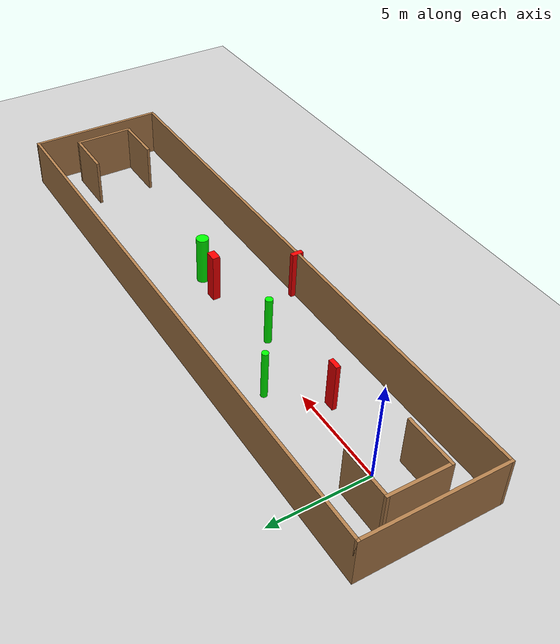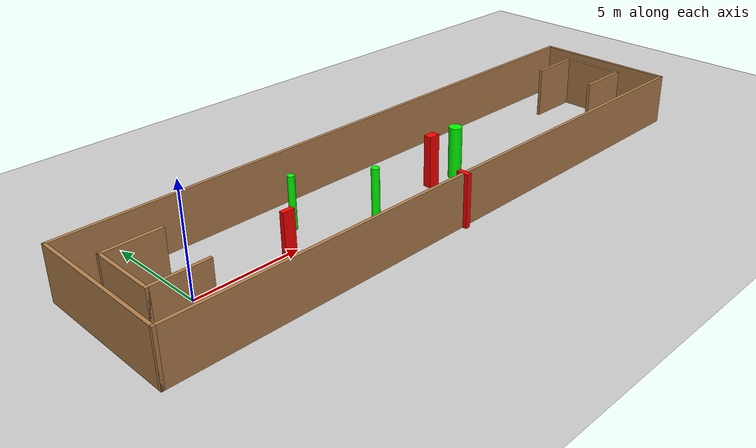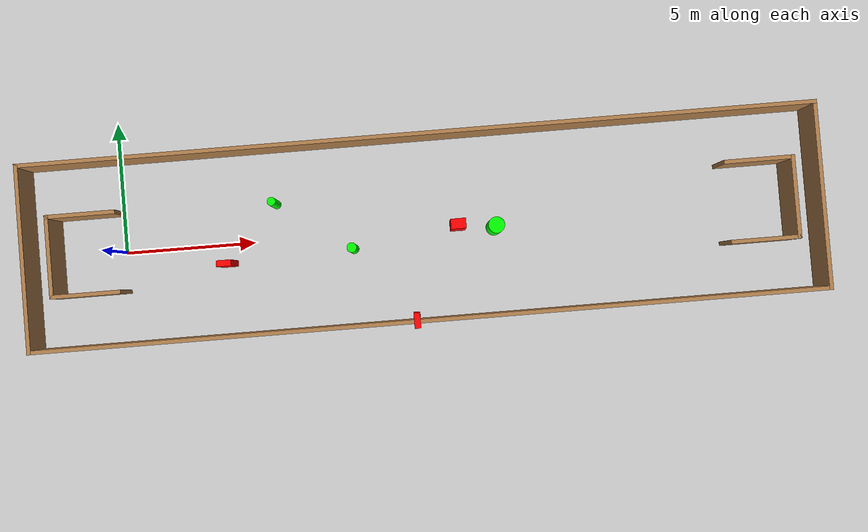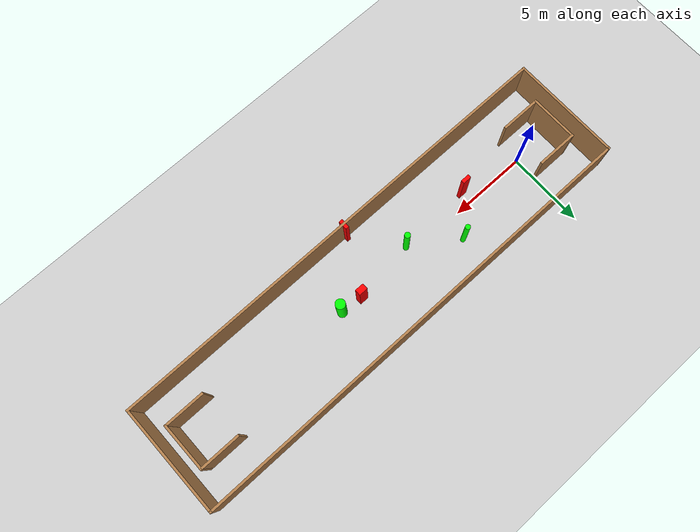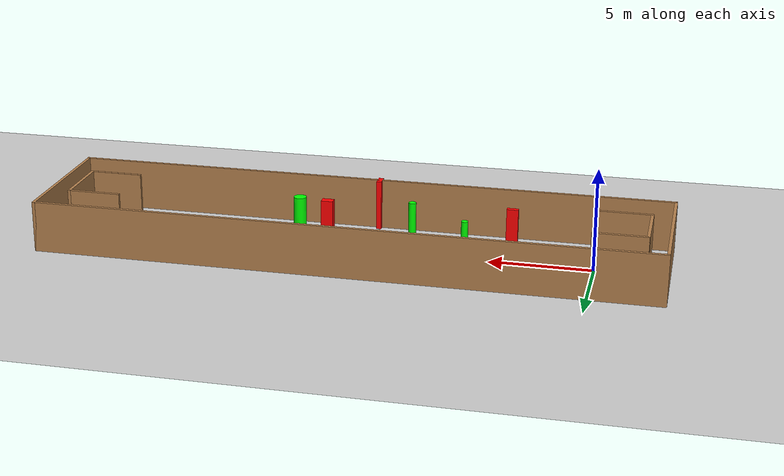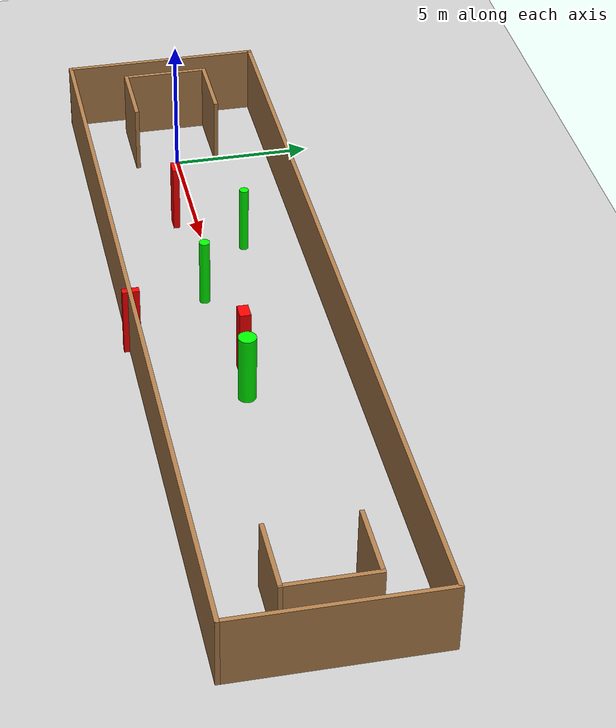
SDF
<sdf version="1.7">
 <world name="default">
  <light name="sun" type="directional">
   <pose>0 0 10 0 -0 0</pose>
   <diffuse>0.8 0.8 0.8 1</diffuse>
   <specular>0.2 0.2 0.2 1</specular>
   <attenuation>
    <range>1000</range>
    <constant>0.9</constant>
    <linear>0.01</linear>
    <quadratic>0.001</quadratic>
   </attenuation>
   <direction>-0.5 0.1 -0.9</direction>
   <spot><inner_angle>0</inner_angle><outer_angle>0</outer_angle><falloff>0</falloff></spot>
  </light>
  <model name="ground_plane">
   <static>1</static>
   <link name="link">
    <collision name="collision">
     <geometry><plane><normal>0 0 1</normal><size>100 100</size></plane></geometry>
     <surface>
      <contact><collide_bitmask>65535</collide_bitmask></contact>
      <friction><ode><mu>100</mu><mu2>50</mu2></ode></friction>
     </surface>
    </collision>
    <visual name="visual">
     <cast_shadows>0</cast_shadows>
     <geometry><plane><normal>0 0 1</normal><size>100 100</size></plane></geometry>
     <material>
      <script><uri>file://media/materials/scripts/gazebo.material</uri><name>Gazebo/Grey</name></script>
     </material>
    </visual>
   </link>
  </model>
  <gravity>0 0 -9.8</gravity>
  <magnetic_field>6e-06 2.3e-05 -4.2e-05</magnetic_field>
  <atmosphere type="adiabatic"/>
  <physics type="ode">
   <max_step_size>0.001</max_step_size>
   <real_time_factor>1</real_time_factor>
   <real_time_update_rate>1000</real_time_update_rate>
  </physics>
  <scene><ambient>0.4 0.4 0.4 1</ambient><background>0.7 0.7 0.7 1</background><shadows>1</shadows></scene>
  <spherical_coordinates>
   <surface_model>EARTH_WGS84</surface_model>
   <latitude_deg>0</latitude_deg>
   <longitude_deg>0</longitude_deg>
   <elevation>0</elevation>
   <heading_deg>0</heading_deg>
  </spherical_coordinates>
  <model name="my_base_walls">
   <link name="Wall_0">
    <collision name="Wall_0_Collision">
     <geometry><box><size>7.15 0.15 2.5</size></box></geometry>
     <pose>0 0 1.25 0 -0 0</pose>
    </collision>
    <visual name="Wall_0_Visual">
     <pose>0 0 1.25 0 -0 0</pose>
     <geometry><box><size>7.15 0.15 2.5</size></box></geometry>
     <material>
      <script><uri>file://media/materials/scripts/gazebo.material</uri><name>Gazebo/Wood</name></script>
      <ambient>1 1 1 1</ambient>
     </material>
     <meta><layer>0</layer></meta>
    </visual>
    <pose>-15 0 0 0 -0 1.5708</pose>
   </link>
   <link name="Wall_10">
    <collision name="Wall_10_Collision">
     <geometry><box><size>2.65 0.15 2.5</size></box></geometry>
     <pose>0 0 1.25 0 -0 0</pose>
    </collision>
    <visual name="Wall_10_Visual">
     <pose>0 0 1.25 0 -0 0</pose>
     <geometry><box><size>2.65 0.15 2.5</size></box></geometry>
     <material>
      <script><uri>file://media/materials/scripts/gazebo.material</uri><name>Gazebo/Wood</name></script>
      <ambient>1 1 1 1</ambient>
     </material>
     <meta><layer>0</layer></meta>
    </visual>
    <pose>-12.75 -1.5 0 0 -0 0</pose>
   </link>
   <link name="Wall_12">
    <collision name="Wall_12_Collision">
     <geometry><box><size>2.65 0.15 2.5</size></box></geometry>
     <pose>0 0 1.25 0 -0 0</pose>
    </collision>
    <visual name="Wall_12_Visual">
     <pose>0 0 1.25 0 -0 0</pose>
     <geometry><box><size>2.65 0.15 2.5</size></box></geometry>
     <material>
      <script><uri>file://media/materials/scripts/gazebo.material</uri><name>Gazebo/Wood</name></script>
      <ambient>1 1 1 1</ambient>
     </material>
     <meta><layer>0</layer></meta>
    </visual>
    <pose>-12.75 1.5 0 0 -0 0</pose>
   </link>
   <link name="Wall_14">
    <collision name="Wall_14_Collision">
     <geometry><box><size>3.15 0.15 2.5</size></box></geometry>
     <pose>0 0 1.25 0 -0 0</pose>
    </collision>
    <visual name="Wall_14_Visual">
     <pose>0 0 1.25 0 -0 0</pose>
     <geometry><box><size>3.15 0.15 2.5</size></box></geometry>
     <material>
      <script><uri>file://media/materials/scripts/gazebo.material</uri><name>Gazebo/Wood</name></script>
      <ambient>1 1 1 1</ambient>
     </material>
     <meta><layer>0</layer></meta>
    </visual>
    <pose>14 0 0 0 -0 -1.5708</pose>
   </link>
   <link name="Wall_15">
    <collision name="Wall_15_Collision">
     <geometry><box><size>2.65 0.15 2.5</size></box></geometry>
     <pose>0 0 1.25 0 -0 0</pose>
    </collision>
    <visual name="Wall_15_Visual">
     <pose>0 0 1.25 0 -0 0</pose>
     <geometry><box><size>2.65 0.15 2.5</size></box></geometry>
     <material>
      <script><uri>file://media/materials/scripts/gazebo.material</uri><name>Gazebo/Wood</name></script>
      <ambient>1 1 1 1</ambient>
     </material>
     <meta><layer>0</layer></meta>
    </visual>
    <pose>12.75 -1.5 0 0 -0 3.14159</pose>
   </link>
   <link name="Wall_17">
    <collision name="Wall_17_Collision">
     <geometry><box><size>2.65 0.15 2.5</size></box></geometry>
     <pose>0 0 1.25 0 -0 0</pose>
    </collision>
    <visual name="Wall_17_Visual">
     <pose>0 0 1.25 0 -0 0</pose>
     <geometry><box><size>2.65 0.15 2.5</size></box></geometry>
     <material>
      <script><uri>file://media/materials/scripts/gazebo.material</uri><name>Gazebo/Wood</name></script>
      <ambient>1 1 1 1</ambient>
     </material>
     <meta><layer>0</layer></meta>
    </visual>
    <pose>12.75 1.5 0 0 -0 3.14159</pose>
   </link>
   <link name="Wall_2">
    <collision name="Wall_2_Collision">
     <geometry><box><size>30.15 0.15 2.5</size></box></geometry>
     <pose>0 0 1.25 0 -0 0</pose>
    </collision>
    <visual name="Wall_2_Visual">
     <pose>0 0 1.25 0 -0 0</pose>
     <geometry><box><size>30.15 0.15 2.5</size></box></geometry>
     <material>
      <script><uri>file://media/materials/scripts/gazebo.material</uri><name>Gazebo/Wood</name></script>
      <ambient>1 1 1 1</ambient>
     </material>
     <meta><layer>0</layer></meta>
    </visual>
    <pose>-0 -3.5 0 0 -0 0</pose>
   </link>
   <link name="Wall_4">
    <collision name="Wall_4_Collision">
     <geometry><box><size>30.15 0.15 2.5</size></box></geometry>
     <pose>0 0 1.25 0 -0 0</pose>
    </collision>
    <visual name="Wall_4_Visual">
     <pose>0 0 1.25 0 -0 0</pose>
     <geometry><box><size>30.15 0.15 2.5</size></box></geometry>
     <material>
      <script><uri>file://media/materials/scripts/gazebo.material</uri><name>Gazebo/Wood</name></script>
      <ambient>1 1 1 1</ambient>
     </material>
     <meta><layer>0</layer></meta>
    </visual>
    <pose>-0 3.5 0 0 -0 0</pose>
   </link>
   <link name="Wall_6">
    <collision name="Wall_6_Collision">
     <geometry><box><size>7.15 0.15 2.5</size></box></geometry>
     <pose>0 0 1.25 0 -0 0</pose>
    </collision>
    <visual name="Wall_6_Visual">
     <pose>0 0 1.25 0 -0 0</pose>
     <geometry><box><size>7.15 0.15 2.5</size></box></geometry>
     <material>
      <script><uri>file://media/materials/scripts/gazebo.material</uri><name>Gazebo/Wood</name></script>
      <ambient>1 1 1 1</ambient>
     </material>
     <meta><layer>0</layer></meta>
    </visual>
    <pose>15 0 0 0 -0 -1.5708</pose>
   </link>
   <link name="Wall_9">
    <collision name="Wall_9_Collision">
     <geometry><box><size>3.15 0.15 2.5</size></box></geometry>
     <pose>0 0 1.25 0 -0 0</pose>
    </collision>
    <visual name="Wall_9_Visual">
     <pose>0 0 1.25 0 -0 0</pose>
     <geometry><box><size>3.15 0.15 2.5</size></box></geometry>
     <material>
      <script><uri>file://media/materials/scripts/gazebo.material</uri><name>Gazebo/Wood</name></script>
      <ambient>1 1 1 1</ambient>
     </material>
     <meta><layer>0</layer></meta>
    </visual>
    <pose>-14 0 0 0 -0 -1.5708</pose>
   </link>
   <static>1</static>
   <pose>11.5 0 0 0 -0 0</pose>
  </model>
  <model name="cylinder1">
   <static>1</static>
   <link name="link">
    <inertial>
     <mass>1</mass>
     <inertia><ixx>0.5</ixx><ixy>0</ixy><ixz>0</ixz><iyy>0.5</iyy><iyz>0</iyz><izz>1</izz></inertia>
    </inertial>
    <collision name="collision">
     <geometry><cylinder><radius>0.16103357957487066</radius><length>2.5</length></cylinder></geometry>
    </collision>
    <visual name="visual">
     <geometry><cylinder><radius>0.16103357957487066</radius><length>2.5</length></cylinder></geometry>
     <material>
      <ambient>0 1 0 1</ambient>
      <diffuse>0 1 0 1</diffuse>
      <specular>0.1 0.1 0.1 1</specular>
      <emissive>0 0 0 0</emissive>
     </material>
    </visual>
   </link>
   <pose>5.93250470840152 1.4028101368702695 1.25 0 0 0</pose>
  </model>
  <model name="cylinder2">
   <static>1</static>
   <link name="link">
    <inertial>
     <mass>1</mass>
     <inertia><ixx>0.5</ixx><ixy>0</ixy><ixz>0</ixz><iyy>0.5</iyy><iyz>0</iyz><izz>1</izz></inertia>
    </inertial>
    <collision name="collision">
     <geometry><cylinder><radius>0.30960807894906106</radius><length>2.5</length></cylinder></geometry>
    </collision>
    <visual name="visual">
     <geometry><cylinder><radius>0.30960807894906106</radius><length>2.5</length></cylinder></geometry>
     <material>
      <ambient>0 1 0 1</ambient>
      <diffuse>0 1 0 1</diffuse>
      <specular>0.1 0.1 0.1 1</specular>
      <emissive>0 0 0 0</emissive>
     </material>
    </visual>
   </link>
   <pose>14.256221133349683 -0.15478084244423407 1.25 0 0 0</pose>
  </model>
  <model name="cylinder3">
   <static>1</static>
   <link name="link">
    <inertial>
     <mass>1</mass>
     <inertia><ixx>0.5</ixx><ixy>0</ixy><ixz>0</ixz><iyy>0.5</iyy><iyz>0</iyz><izz>1</izz></inertia>
    </inertial>
    <collision name="collision">
     <geometry><cylinder><radius>0.1846508836324249</radius><length>2.5</length></cylinder></geometry>
    </collision>
    <visual name="visual">
     <geometry><cylinder><radius>0.1846508836324249</radius><length>2.5</length></cylinder></geometry>
     <material>
      <ambient>0 1 0 1</ambient>
      <diffuse>0 1 0 1</diffuse>
      <specular>0.1 0.1 0.1 1</specular>
      <emissive>0 0 0 0</emissive>
     </material>
    </visual>
   </link>
   <pose>8.794180498928025 -0.5564911516015885 1.25 0 0 0</pose>
  </model>
  <model name="box1">
   <static>1</static>
   <link name="link">
    <inertial>
     <mass>1</mass>
     <inertia><ixx>0.083</ixx><ixy>0</ixy><ixz>0</ixz><iyy>0.083</iyy><iyz>0</iyz><izz>0.083</izz></inertia>
    </inertial>
    <collision name="collision">
     <geometry><box><size>0.5548522000103974 0.22849291315168418 2.5</size></box></geometry>
    </collision>
    <visual name="visual">
     <geometry><box><size>0.5548522000103974 0.22849291315168418 2.5</size></box></geometry>
     <material>
      <ambient>1 0 0 1</ambient>
      <diffuse>1 0 0 1</diffuse>
      <specular>0.1 0.1 0.1 1</specular>
      <emissive>0 0 0 0</emissive>
     </material>
    </visual>
    <sensor name="my_contact" type="contact">
     <contact><collision>box_collision</collision><topic>__default_topic__</topic></contact>
    </sensor>
   </link>
   <pose>3.9876669779097007 -0.7493956558827222 1.25 0 0 0</pose>
  </model>
  <model name="box2">
   <static>1</static>
   <link name="link">
    <inertial>
     <mass>1</mass>
     <inertia><ixx>0.083</ixx><ixy>0</ixy><ixz>0</ixz><iyy>0.083</iyy><iyz>0</iyz><izz>0.083</izz></inertia>
    </inertial>
    <collision name="collision">
     <geometry><box><size>0.23811900987138462 0.5854324894965096 2.5</size></box></geometry>
    </collision>
    <visual name="visual">
     <geometry><box><size>0.23811900987138462 0.5854324894965096 2.5</size></box></geometry>
     <material>
      <ambient>1 0 0 1</ambient>
      <diffuse>1 0 0 1</diffuse>
      <specular>0.1 0.1 0.1 1</specular>
      <emissive>0 0 0 0</emissive>
     </material>
    </visual>
    <sensor name="my_contact" type="contact">
     <contact><collision>box_collision</collision><topic>__default_topic__</topic></contact>
    </sensor>
   </link>
   <pose>11.018934012391476 -3.470313309623121 1.25 0 0 0</pose>
  </model>
  <model name="box3">
   <static>1</static>
   <link name="link">
    <inertial>
     <mass>1</mass>
     <inertia><ixx>0.083</ixx><ixy>0</ixy><ixz>0</ixz><iyy>0.083</iyy><iyz>0</iyz><izz>0.083</izz></inertia>
    </inertial>
    <collision name="collision">
     <geometry><box><size>0.5700820106785967 0.382476067661047 2.5</size></box></geometry>
    </collision>
    <visual name="visual">
     <geometry><box><size>0.5700820106785967 0.382476067661047 2.5</size></box></geometry>
     <material>
      <ambient>1 0 0 1</ambient>
      <diffuse>1 0 0 1</diffuse>
      <specular>0.1 0.1 0.1 1</specular>
      <emissive>0 0 0 0</emissive>
     </material>
    </visual>
    <sensor name="my_contact" type="contact">
     <contact><collision>box_collision</collision><topic>__default_topic__</topic></contact>
    </sensor>
   </link>
   <pose>12.84008393087103 0.016095283675686467 1.25 0 0 0</pose>
  </model>
 </world>
</sdf>
